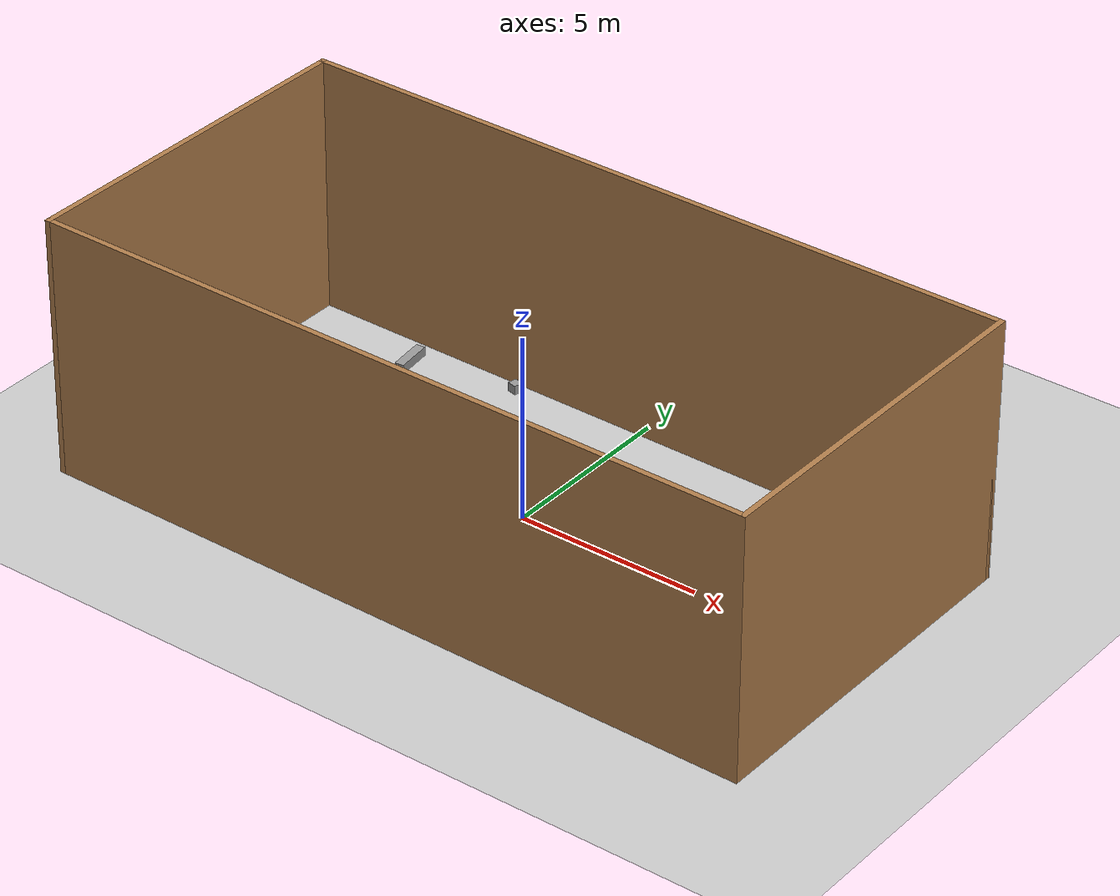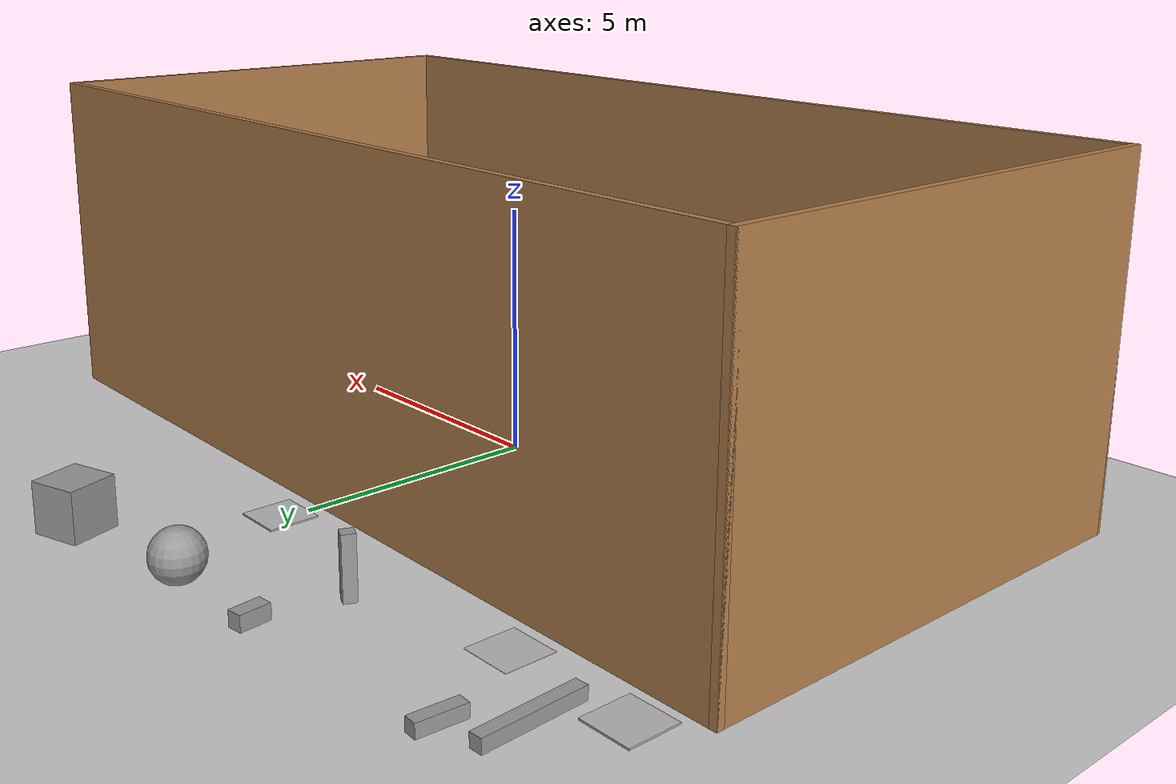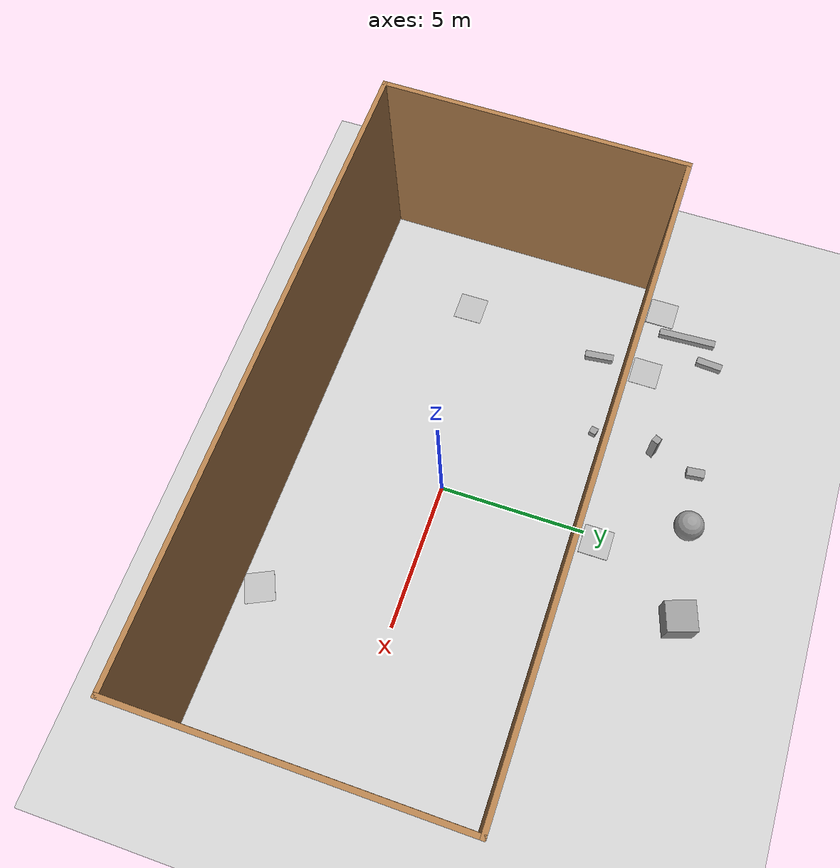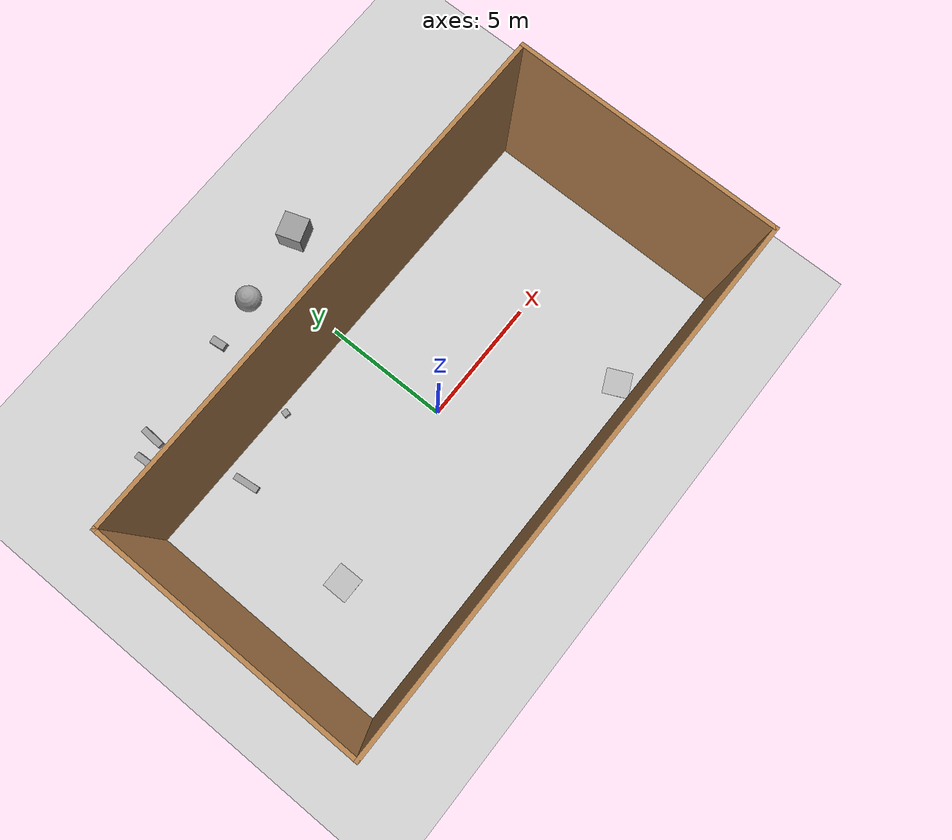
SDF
<sdf version="1.7">
 <world name="default">
  <light name="sun" type="directional">
   <pose>0 0 10 0 -0 0</pose>
   <diffuse>0.8 0.8 0.8 1</diffuse>
   <specular>0.2 0.2 0.2 1</specular>
   <attenuation>
    <range>1000</range>
    <constant>0.9</constant>
    <linear>0.01</linear>
    <quadratic>0.001</quadratic>
   </attenuation>
   <direction>-0.5 0.1 -0.9</direction>
   <spot><inner_angle>0</inner_angle><outer_angle>0</outer_angle><falloff>0</falloff></spot>
  </light>
  <model name="ground_plane">
   <static>1</static>
   <link name="link">
    <collision name="collision">
     <geometry><plane><normal>0 0 1</normal><size>100 100</size></plane></geometry>
     <surface><friction><ode><mu>100</mu><mu2>50</mu2></ode></friction></surface>
    </collision>
    <visual name="visual">
     <cast_shadows>0</cast_shadows>
     <geometry><plane><normal>0 0 1</normal><size>100 100</size></plane></geometry>
     <material>
      <script><uri>file://media/materials/scripts/gazebo.material</uri><name>Gazebo/Grey</name></script>
     </material>
    </visual>
   </link>
  </model>
  <gravity>0 0 -9.8</gravity>
  <magnetic_field>6e-06 2.3e-05 -4.2e-05</magnetic_field>
  <atmosphere type="adiabatic"/>
  <physics name="default_physics" default="0" type="ode">
   <max_step_size>0.001</max_step_size>
   <real_time_factor>1</real_time_factor>
   <real_time_update_rate>1000</real_time_update_rate>
  </physics>
  <scene><ambient>0.4 0.4 0.4 1</ambient><background>0.7 0.7 0.7 1</background><shadows>1</shadows></scene>
  <spherical_coordinates>
   <surface_model>EARTH_WGS84</surface_model>
   <latitude_deg>0</latitude_deg>
   <longitude_deg>0</longitude_deg>
   <elevation>0</elevation>
   <heading_deg>0</heading_deg>
  </spherical_coordinates>
  <model name="h_1">
   <link name="link">
    <pose>0 0 0.115 0 -0 0</pose>
    <inertial>
     <mass>1000</mass>
     <inertia><ixx>1000</ixx><ixy>0</ixy><ixz>0</ixz><iyy>1000</iyy><iyz>0</iyz><izz>1000</izz></inertia>
    </inertial>
    <collision name="collision">
     <geometry><box><size>0.496 0.496 0.01</size></box></geometry>
     <surface>
      <contact>
       <poissons_ratio>0.347</poissons_ratio>
       <elastic_modulus>8.8e+09</elastic_modulus>
       <ode><kp>100000</kp><kd>100</kd><max_vel>100</max_vel><min_depth>0.001</min_depth></ode>
      </contact>
      <friction>
       <torsional>
        <coefficient>1</coefficient>
        <use_patch_radius>0</use_patch_radius>
        <surface_radius>0.01</surface_radius>
       </torsional>
      </friction>
     </surface>
    </collision>
    <visual name="visual">
     <geometry><box><size>1 1 0.05</size></box></geometry>
     <material>
      <script>
       <uri>model://H/materials/scripts</uri>
       <uri>model://H/materials/textures</uri>
       <name>Mark/Diffuse2</name>
      </script>
     </material>
    </visual>
   </link>
   <pose>-8.95845 5.4829 -0.135258 0 -0 0</pose>
  </model>
  <model name="h_1_clone">
   <link name="link">
    <pose>0 0 0.115 0 -0 0</pose>
    <inertial>
     <mass>1000</mass>
     <inertia><ixx>1000</ixx><ixy>0</ixy><ixz>0</ixz><iyy>1000</iyy><iyz>0</iyz><izz>1000</izz></inertia>
    </inertial>
    <collision name="collision">
     <geometry><box><size>0.496 0.496 0.01</size></box></geometry>
     <surface>
      <contact>
       <poissons_ratio>0.347</poissons_ratio>
       <elastic_modulus>8.8e+09</elastic_modulus>
       <ode><kp>100000</kp><kd>100</kd><max_vel>100</max_vel><min_depth>0.001</min_depth></ode>
      </contact>
      <friction>
       <torsional>
        <coefficient>1</coefficient>
        <use_patch_radius>0</use_patch_radius>
        <surface_radius>0.01</surface_radius>
       </torsional>
      </friction>
     </surface>
    </collision>
    <visual name="visual">
     <geometry><box><size>1 1 0.05</size></box></geometry>
     <material>
      <script>
       <uri>model://H/materials/scripts</uri>
       <uri>model://H/materials/textures</uri>
       <name>Mark/Diffuse2</name>
      </script>
     </material>
    </visual>
   </link>
   <pose>0.183791 5.48947 -0.135258 0 -0 0.001493</pose>
  </model>
  <model name="zhuangjiache_0">
   <link name="link">
    <pose>0 0 0.115 0 -0 0</pose>
    <inertial>
     <mass>3.39</mass>
     <inertia><ixx>0.58</ixx><ixy>0</ixy><ixz>0</ixz><iyy>0.58</iyy><iyz>0</iyz><izz>0.19</izz></inertia>
    </inertial>
    <collision name="collision"><geometry><box><size>0.496 0.496 0.01</size></box></geometry></collision>
    <visual name="visual">
     <geometry><box><size>1 1 0.005</size></box></geometry>
     <material>
      <script>
       <uri>model://zhuangjiache/materials/scripts</uri>
       <uri>model://zhuangjiache/materials/textures</uri>
       <name>Mark/Diffuse6</name>
      </script>
     </material>
    </visual>
   </link>
   <pose>-6.96968 -1.24631 -0.11 0 -0 0.002874</pose>
  </model>
  <model name="zhangpeng_0">
   <link name="link">
    <pose>0 0 0.115 0 -0 0</pose>
    <inertial>
     <mass>3.39</mass>
     <inertia><ixx>0.58</ixx><ixy>0</ixy><ixz>0</ixz><iyy>0.58</iyy><iyz>0</iyz><izz>0.19</izz></inertia>
    </inertial>
    <collision name="collision"><geometry><box><size>0.496 0.496 0.005</size></box></geometry></collision>
    <visual name="visual">
     <geometry><box><size>1 1 0.005</size></box></geometry>
     <material>
      <script>
       <uri>model://zhangpeng/materials/scripts</uri>
       <uri>model://zhangpeng/materials/textures</uri>
       <name>Mark/Diffuse5</name>
      </script>
     </material>
    </visual>
   </link>
   <pose>5.10524 -4.53401 0.1175 -3.14159 -0 -1.1365</pose>
  </model>
  <model name="tanke_0">
   <link name="link">
    <pose>0 0 0.115 0 -0 0</pose>
    <inertial>
     <mass>3.39</mass>
     <inertia><ixx>0.58</ixx><ixy>0</ixy><ixz>0</ixz><iyy>0.58</iyy><iyz>0</iyz><izz>0.19</izz></inertia>
    </inertial>
    <collision name="collision"><geometry><box><size>0.496 0.496 0.005</size></box></geometry></collision>
    <visual name="visual">
     <geometry><box><size>1 1 0.005</size></box></geometry>
     <material>
      <script>
       <uri>model://tanke/materials/scripts</uri>
       <uri>model://tanke/materials/textures</uri>
       <name>Mark/Diffuse4</name>
      </script>
     </material>
    </visual>
   </link>
   <pose>-6.41052 5.49151 -0.1125 0 -0 -0.000981</pose>
  </model>
  <model name="unit_box_1">
   <link name="link">
    <inertial>
     <mass>1</mass>
     <inertia>
      <ixx>0.166667</ixx>
      <ixy>0</ixy>
      <ixz>0</ixz>
      <iyy>0.166667</iyy>
      <iyz>0</iyz>
      <izz>0.166667</izz>
     </inertia>
    </inertial>
    <pose>0.033703 0.185129 -0 0 -0 0</pose>
    <visual name="visual">
     <geometry><box><size>0.25 0.25 1</size></box></geometry>
     <material>
      <lighting>1</lighting>
      <script><uri>file://media/materials/scripts/gazebo.material</uri><name>Gazebo/Grey</name></script>
      <shader type="pixel"><normal_map>__default__</normal_map></shader>
      <ambient>0.3 0.3 0.3 1</ambient>
      <diffuse>0.7 0.7 0.7 1</diffuse>
      <specular>0.01 0.01 0.01 1</specular>
      <emissive>0 0 0 1</emissive>
     </material>
    </visual>
    <collision name="collision">
     <geometry><box><size>0.25 0.25 1</size></box></geometry>
     <surface>
      <friction>
       <ode><mu>1</mu><mu2>1</mu2><fdir1>0 0 0</fdir1><slip1>0</slip1><slip2>0</slip2></ode>
       <torsional>
        <coefficient>1</coefficient>
        <patch_radius>0</patch_radius>
        <surface_radius>0</surface_radius>
        <use_patch_radius>1</use_patch_radius>
        <ode><slip>0</slip></ode>
       </torsional>
      </friction>
      <bounce><restitution_coefficient>0</restitution_coefficient><threshold>1e+06</threshold></bounce>
      <contact>
       <collide_without_contact>0</collide_without_contact>
       <collide_without_contact_bitmask>1</collide_without_contact_bitmask>
       <collide_bitmask>1</collide_bitmask>
       <ode>
        <soft_cfm>0</soft_cfm>
        <soft_erp>0.2</soft_erp>
        <kp>1e+13</kp>
        <kd>1</kd>
        <max_vel>0.01</max_vel>
        <min_depth>0</min_depth>
       </ode>
       <bullet>
        <split_impulse>1</split_impulse>
        <split_impulse_penetration_threshold>-0.01</split_impulse_penetration_threshold>
        <soft_cfm>0</soft_cfm>
        <soft_erp>0.2</soft_erp>
        <kp>1e+13</kp>
        <kd>1</kd>
       </bullet>
      </contact>
     </surface>
    </collision>
   </link>
   <static>0</static>
   <pose>-6.47527 3.74971 0.310129 -1.5708 0 0.113982</pose>
  </model>
  <model name="unit_box_0.6">
   <link name="link">
    <inertial>
     <mass>1</mass>
     <inertia>
      <ixx>0.166667</ixx>
      <ixy>0</ixy>
      <ixz>0</ixz>
      <iyy>0.166667</iyy>
      <iyz>0</iyz>
      <izz>0.166667</izz>
     </inertia>
    </inertial>
    <pose>0.033703 0.185129 -0 0 -0 0</pose>
    <visual name="visual">
     <geometry><box><size>0.3 0.3 0.6</size></box></geometry>
     <material>
      <lighting>1</lighting>
      <script><uri>file://media/materials/scripts/gazebo.material</uri><name>Gazebo/Grey</name></script>
      <shader type="pixel"><normal_map>__default__</normal_map></shader>
      <ambient>0.3 0.3 0.3 1</ambient>
      <diffuse>0.7 0.7 0.7 1</diffuse>
      <specular>0.01 0.01 0.01 1</specular>
      <emissive>0 0 0 1</emissive>
     </material>
    </visual>
    <collision name="collision">
     <geometry><box><size>0.3 0.3 0.6</size></box></geometry>
     <surface>
      <friction>
       <ode><mu>1</mu><mu2>1</mu2><fdir1>0 0 0</fdir1><slip1>0</slip1><slip2>0</slip2></ode>
       <torsional>
        <coefficient>1</coefficient>
        <patch_radius>0</patch_radius>
        <surface_radius>0</surface_radius>
        <use_patch_radius>1</use_patch_radius>
        <ode><slip>0</slip></ode>
       </torsional>
      </friction>
      <bounce><restitution_coefficient>0</restitution_coefficient><threshold>1e+06</threshold></bounce>
      <contact>
       <collide_without_contact>0</collide_without_contact>
       <collide_without_contact_bitmask>1</collide_without_contact_bitmask>
       <collide_bitmask>1</collide_bitmask>
       <ode>
        <soft_cfm>0</soft_cfm>
        <soft_erp>0.2</soft_erp>
        <kp>1e+13</kp>
        <kd>1</kd>
        <max_vel>0.01</max_vel>
        <min_depth>0</min_depth>
       </ode>
       <bullet>
        <split_impulse>1</split_impulse>
        <split_impulse_penetration_threshold>-0.01</split_impulse_penetration_threshold>
        <soft_cfm>0</soft_cfm>
        <soft_erp>0.2</soft_erp>
        <kp>1e+13</kp>
        <kd>1</kd>
       </bullet>
      </contact>
     </surface>
    </collision>
   </link>
   <static>0</static>
   <pose>-3.32439 8.01435 0.183703 -1.6882 1.57079 3.14159</pose>
  </model>
  <model name="unit_box_0.25">
   <link name="link">
    <inertial>
     <mass>1</mass>
     <inertia>
      <ixx>0.166667</ixx>
      <ixy>0</ixy>
      <ixz>0</ixz>
      <iyy>0.166667</iyy>
      <iyz>0</iyz>
      <izz>0.166667</izz>
     </inertia>
    </inertial>
    <pose>0.033703 0.185129 -0 0 -0 0</pose>
    <visual name="visual">
     <geometry><box><size>0.25 0.25 0.25</size></box></geometry>
     <material>
      <lighting>1</lighting>
      <script><uri>file://media/materials/scripts/gazebo.material</uri><name>Gazebo/Grey</name></script>
      <shader type="pixel"><normal_map>__default__</normal_map></shader>
      <ambient>0.3 0.3 0.3 1</ambient>
      <diffuse>0.7 0.7 0.7 1</diffuse>
      <specular>0.01 0.01 0.01 1</specular>
      <emissive>0 0 0 1</emissive>
     </material>
    </visual>
    <collision name="collision">
     <geometry><box><size>0.25 0.25 0.25</size></box></geometry>
     <surface>
      <friction>
       <ode><mu>1</mu><mu2>1</mu2><fdir1>0 0 0</fdir1><slip1>0</slip1><slip2>0</slip2></ode>
       <torsional>
        <coefficient>1</coefficient>
        <patch_radius>0</patch_radius>
        <surface_radius>0</surface_radius>
        <use_patch_radius>1</use_patch_radius>
        <ode><slip>0</slip></ode>
       </torsional>
      </friction>
      <bounce><restitution_coefficient>0</restitution_coefficient><threshold>1e+06</threshold></bounce>
      <contact>
       <collide_without_contact>0</collide_without_contact>
       <collide_without_contact_bitmask>1</collide_without_contact_bitmask>
       <collide_bitmask>1</collide_bitmask>
       <ode>
        <soft_cfm>0</soft_cfm>
        <soft_erp>0.2</soft_erp>
        <kp>1e+13</kp>
        <kd>1</kd>
        <max_vel>0.01</max_vel>
        <min_depth>0</min_depth>
       </ode>
       <bullet>
        <split_impulse>1</split_impulse>
        <split_impulse_penetration_threshold>-0.01</split_impulse_penetration_threshold>
        <soft_cfm>0</soft_cfm>
        <soft_erp>0.2</soft_erp>
        <kp>1e+13</kp>
        <kd>1</kd>
       </bullet>
      </contact>
     </surface>
    </collision>
   </link>
   <static>0</static>
   <pose>-3.65186 4.16416 0.125 0 -0 -0.235881</pose>
  </model>
  <model name="unit_box_2">
   <link name="link">
    <inertial>
     <mass>1</mass>
     <inertia>
      <ixx>0.166667</ixx>
      <ixy>0</ixy>
      <ixz>0</ixz>
      <iyy>0.166667</iyy>
      <iyz>0</iyz>
      <izz>0.166667</izz>
     </inertia>
    </inertial>
    <pose>0.033703 0.185129 -0 0 -0 0</pose>
    <visual name="visual">
     <geometry><box><size>0.25 0.25 2</size></box></geometry>
     <material>
      <lighting>1</lighting>
      <script><uri>file://media/materials/scripts/gazebo.material</uri><name>Gazebo/Grey</name></script>
      <shader type="pixel"><normal_map>__default__</normal_map></shader>
      <ambient>0.3 0.3 0.3 1</ambient>
      <diffuse>0.7 0.7 0.7 1</diffuse>
      <specular>0.01 0.01 0.01 1</specular>
      <emissive>0 0 0 1</emissive>
     </material>
    </visual>
    <collision name="collision">
     <geometry><box><size>0.25 0.25 2</size></box></geometry>
     <surface>
      <friction>
       <ode><mu>1</mu><mu2>1</mu2><fdir1>0 0 0</fdir1><slip1>0</slip1><slip2>0</slip2></ode>
       <torsional>
        <coefficient>1</coefficient>
        <patch_radius>0</patch_radius>
        <surface_radius>0</surface_radius>
        <use_patch_radius>1</use_patch_radius>
        <ode><slip>0</slip></ode>
       </torsional>
      </friction>
      <bounce><restitution_coefficient>0</restitution_coefficient><threshold>1e+06</threshold></bounce>
      <contact>
       <collide_without_contact>0</collide_without_contact>
       <collide_without_contact_bitmask>1</collide_without_contact_bitmask>
       <collide_bitmask>1</collide_bitmask>
       <ode>
        <soft_cfm>0</soft_cfm>
        <soft_erp>0.2</soft_erp>
        <kp>1e+13</kp>
        <kd>1</kd>
        <max_vel>0.01</max_vel>
        <min_depth>0</min_depth>
       </ode>
       <bullet>
        <split_impulse>1</split_impulse>
        <split_impulse_penetration_threshold>-0.01</split_impulse_penetration_threshold>
        <soft_cfm>0</soft_cfm>
        <soft_erp>0.2</soft_erp>
        <kp>1e+13</kp>
        <kd>1</kd>
       </bullet>
      </contact>
     </surface>
    </collision>
   </link>
   <static>0</static>
   <pose>-7.95056 6.58008 0.158643 3.13872 1.57074 -1.52754</pose>
  </model>
  <model name="unit_box_0.9">
   <link name="link">
    <inertial>
     <mass>1</mass>
     <inertia>
      <ixx>0.166667</ixx>
      <ixy>0</ixy>
      <ixz>0</ixz>
      <iyy>0.166667</iyy>
      <iyz>0</iyz>
      <izz>0.166667</izz>
     </inertia>
    </inertial>
    <pose>0.033703 0.185129 -0 0 -0 0</pose>
    <visual name="visual">
     <geometry><box><size>0.25 0.25 0.9</size></box></geometry>
     <material>
      <lighting>1</lighting>
      <script><uri>file://media/materials/scripts/gazebo.material</uri><name>Gazebo/Grey</name></script>
      <shader type="pixel"><normal_map>__default__</normal_map></shader>
      <ambient>0.3 0.3 0.3 1</ambient>
      <diffuse>0.7 0.7 0.7 1</diffuse>
      <specular>0.01 0.01 0.01 1</specular>
      <emissive>0 0 0 1</emissive>
     </material>
    </visual>
    <collision name="collision">
     <geometry><box><size>0.25 0.25 0.9</size></box></geometry>
     <surface>
      <friction>
       <ode><mu>1</mu><mu2>1</mu2><fdir1>0 0 0</fdir1><slip1>0</slip1><slip2>0</slip2></ode>
       <torsional>
        <coefficient>1</coefficient>
        <patch_radius>0</patch_radius>
        <surface_radius>0</surface_radius>
        <use_patch_radius>1</use_patch_radius>
        <ode><slip>0</slip></ode>
       </torsional>
      </friction>
      <bounce><restitution_coefficient>0</restitution_coefficient><threshold>1e+06</threshold></bounce>
      <contact>
       <collide_without_contact>0</collide_without_contact>
       <collide_without_contact_bitmask>1</collide_without_contact_bitmask>
       <collide_bitmask>1</collide_bitmask>
       <ode>
        <soft_cfm>0</soft_cfm>
        <soft_erp>0.2</soft_erp>
        <kp>1e+13</kp>
        <kd>1</kd>
        <max_vel>0.01</max_vel>
        <min_depth>0</min_depth>
       </ode>
       <bullet>
        <split_impulse>1</split_impulse>
        <split_impulse_penetration_threshold>-0.01</split_impulse_penetration_threshold>
        <soft_cfm>0</soft_cfm>
        <soft_erp>0.2</soft_erp>
        <kp>1e+13</kp>
        <kd>1</kd>
       </bullet>
      </contact>
     </surface>
    </collision>
   </link>
   <static>0</static>
   <pose>-7.38119 7.56237 0.310129 -1.5708 -0 -0.065155</pose>
  </model>
  <model name="unit_box_1.2">
   <link name="link">
    <inertial>
     <mass>1</mass>
     <inertia>
      <ixx>0.166667</ixx>
      <ixy>0</ixy>
      <ixz>0</ixz>
      <iyy>0.166667</iyy>
      <iyz>0</iyz>
      <izz>0.166667</izz>
     </inertia>
    </inertial>
    <pose>0.033703 0.185129 -0 0 -0 0</pose>
    <visual name="visual">
     <geometry><box><size>0.25 0.25 1.2</size></box></geometry>
     <material>
      <lighting>1</lighting>
      <script><uri>file://media/materials/scripts/gazebo.material</uri><name>Gazebo/Grey</name></script>
      <shader type="pixel"><normal_map>__default__</normal_map></shader>
      <ambient>0.3 0.3 0.3 1</ambient>
      <diffuse>0.7 0.7 0.7 1</diffuse>
      <specular>0.01 0.01 0.01 1</specular>
      <emissive>0 0 0 1</emissive>
     </material>
    </visual>
    <collision name="collision">
     <geometry><box><size>0.25 0.25 1.2</size></box></geometry>
     <surface>
      <friction>
       <ode><mu>1</mu><mu2>1</mu2><fdir1>0 0 0</fdir1><slip1>0</slip1><slip2>0</slip2></ode>
       <torsional>
        <coefficient>1</coefficient>
        <patch_radius>0</patch_radius>
        <surface_radius>0</surface_radius>
        <use_patch_radius>1</use_patch_radius>
        <ode><slip>0</slip></ode>
       </torsional>
      </friction>
      <bounce><restitution_coefficient>0</restitution_coefficient><threshold>1e+06</threshold></bounce>
      <contact>
       <collide_without_contact>0</collide_without_contact>
       <collide_without_contact_bitmask>1</collide_without_contact_bitmask>
       <collide_bitmask>1</collide_bitmask>
       <ode>
        <soft_cfm>0</soft_cfm>
        <soft_erp>0.2</soft_erp>
        <kp>1e+13</kp>
        <kd>1</kd>
        <max_vel>0.01</max_vel>
        <min_depth>0</min_depth>
       </ode>
       <bullet>
        <split_impulse>1</split_impulse>
        <split_impulse_penetration_threshold>-0.01</split_impulse_penetration_threshold>
        <soft_cfm>0</soft_cfm>
        <soft_erp>0.2</soft_erp>
        <kp>1e+13</kp>
        <kd>1</kd>
       </bullet>
      </contact>
     </surface>
    </collision>
   </link>
   <static>0</static>
   <pose>-3.5885 6.26605 0.6 1e-06 1e-06 -0.404053</pose>
  </model>
  <model name="unit_box">
   <pose>1.97022 8.61458 0.5 0 -0 0.323434</pose>
   <link name="link">
    <inertial>
     <mass>1</mass>
     <inertia>
      <ixx>0.166667</ixx>
      <ixy>0</ixy>
      <ixz>0</ixz>
      <iyy>0.166667</iyy>
      <iyz>0</iyz>
      <izz>0.166667</izz>
     </inertia>
    </inertial>
    <collision name="collision"><geometry><box><size>1 1 1</size></box></geometry></collision>
    <visual name="visual">
     <geometry><box><size>1 1 1</size></box></geometry>
     <material>
      <script><name>Gazebo/Grey</name><uri>file://media/materials/scripts/gazebo.material</uri></script>
     </material>
    </visual>
   </link>
  </model>
  <model name="unit_sphere">
   <pose>-1.15301 8.22042 0.5 -0.009023 -0.033424 0.000236</pose>
   <link name="link">
    <inertial>
     <mass>1</mass>
     <inertia><ixx>0.1</ixx><ixy>0</ixy><ixz>0</ixz><iyy>0.1</iyy><iyz>0</iyz><izz>0.1</izz></inertia>
    </inertial>
    <collision name="collision"><geometry><sphere><radius>0.5</radius></sphere></geometry></collision>
    <visual name="visual">
     <geometry><sphere><radius>0.5</radius></sphere></geometry>
     <material>
      <script><name>Gazebo/Grey</name><uri>file://media/materials/scripts/gazebo.material</uri></script>
     </material>
    </visual>
   </link>
  </model>
  <light name="user_point_light_0" type="point">
   <pose>-7.02428 -0.880974 1 0 -0 0</pose>
   <diffuse>0.5 0.5 0.5 1</diffuse>
   <specular>0.1 0.1 0.1 1</specular>
   <attenuation>
    <range>20</range>
    <constant>0.5</constant>
    <linear>0.01</linear>
    <quadratic>0.001</quadratic>
   </attenuation>
   <cast_shadows>0</cast_shadows>
   <direction>0 0 -1</direction>
   <spot><inner_angle>0</inner_angle><outer_angle>0</outer_angle><falloff>0</falloff></spot>
  </light>
  <model name="forst_tju_walls">
   <pose>0.072348 8.57055 0 0 -0 1.56416</pose>
   <link name="Wall_2">
    <collision name="Wall_2_Collision">
     <geometry><box><size>20 0.15 7</size></box></geometry>
     <pose>0 0 3.5 0 -0 0</pose>
    </collision>
    <visual name="Wall_2_Visual">
     <pose>0 0 3.5 0 -0 0</pose>
     <geometry><box><size>20 0.15 7</size></box></geometry>
     <material>
      <script><uri>file://media/materials/scripts/gazebo.material</uri><name>Gazebo/Wood</name></script>
      <ambient>1 1 1 1</ambient>
     </material>
     <meta><layer>0</layer></meta>
    </visual>
    <pose>-13.7465 0 0 0 -0 -1.5708</pose>
   </link>
   <link name="Wall_4">
    <collision name="Wall_4_Collision">
     <geometry><box><size>10 0.15 7</size></box></geometry>
     <pose>0 0 3.5 0 -0 0</pose>
    </collision>
    <visual name="Wall_4_Visual">
     <pose>0 0 3.5 0 -0 0</pose>
     <geometry><box><size>10 0.15 7</size></box></geometry>
     <material>
      <script><uri>file://media/materials/scripts/gazebo.material</uri><name>Gazebo/Wood</name></script>
      <ambient>1 1 1 1</ambient>
     </material>
     <meta><layer>0</layer></meta>
    </visual>
    <pose>-8.8215 -9.925 0 0 -0 0</pose>
   </link>
   <link name="Wall_6">
    <collision name="Wall_6_Collision">
     <geometry><box><size>20 0.15 7</size></box></geometry>
     <pose>0 0 3.5 0 -0 0</pose>
    </collision>
    <visual name="Wall_6_Visual">
     <pose>0 0 3.5 0 -0 0</pose>
     <geometry><box><size>20 0.15 7</size></box></geometry>
     <material>
      <script><uri>file://media/materials/scripts/gazebo.material</uri><name>Gazebo/Wood</name></script>
      <ambient>1 1 1 1</ambient>
     </material>
     <meta><layer>0</layer></meta>
    </visual>
    <pose>-3.8965 0 0 0 -0 1.5708</pose>
   </link>
   <link name="Wall_8">
    <collision name="Wall_8_Collision">
     <geometry><box><size>10 0.15 7</size></box></geometry>
     <pose>0 0 3.5 0 -0 0</pose>
    </collision>
    <visual name="Wall_8_Visual">
     <pose>0 0 3.5 0 -0 0</pose>
     <geometry><box><size>10 0.15 7</size></box></geometry>
     <material>
      <script><uri>file://media/materials/scripts/gazebo.material</uri><name>Gazebo/Wood</name></script>
      <ambient>1 1 1 1</ambient>
     </material>
     <meta><layer>0</layer></meta>
    </visual>
    <pose>-8.8215 9.925 0 0 -0 0</pose>
   </link>
   <static>1</static>
  </model>
 </world>
</sdf>
